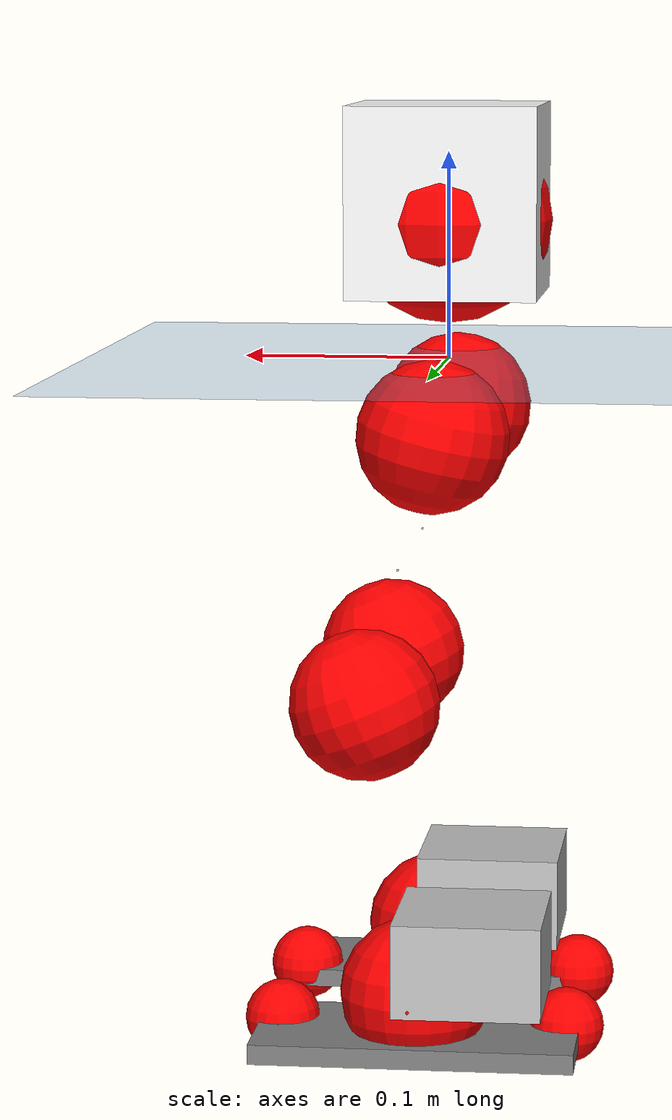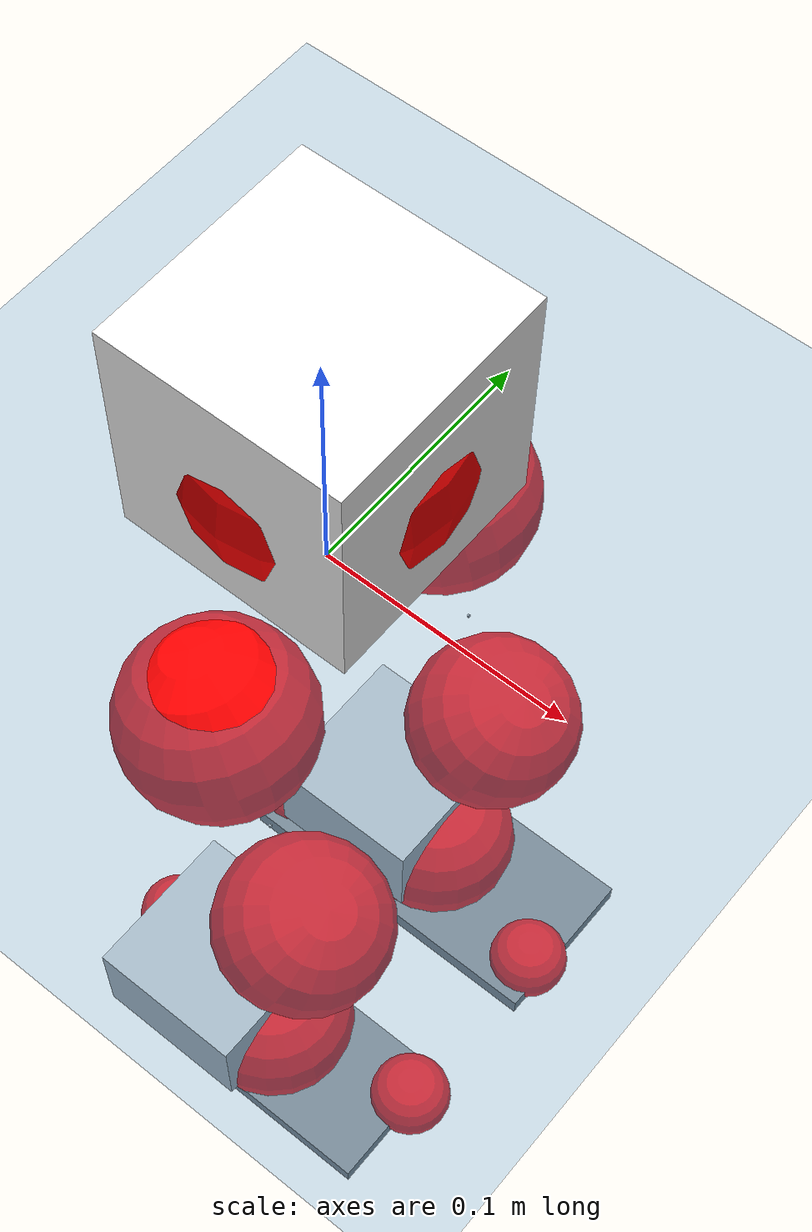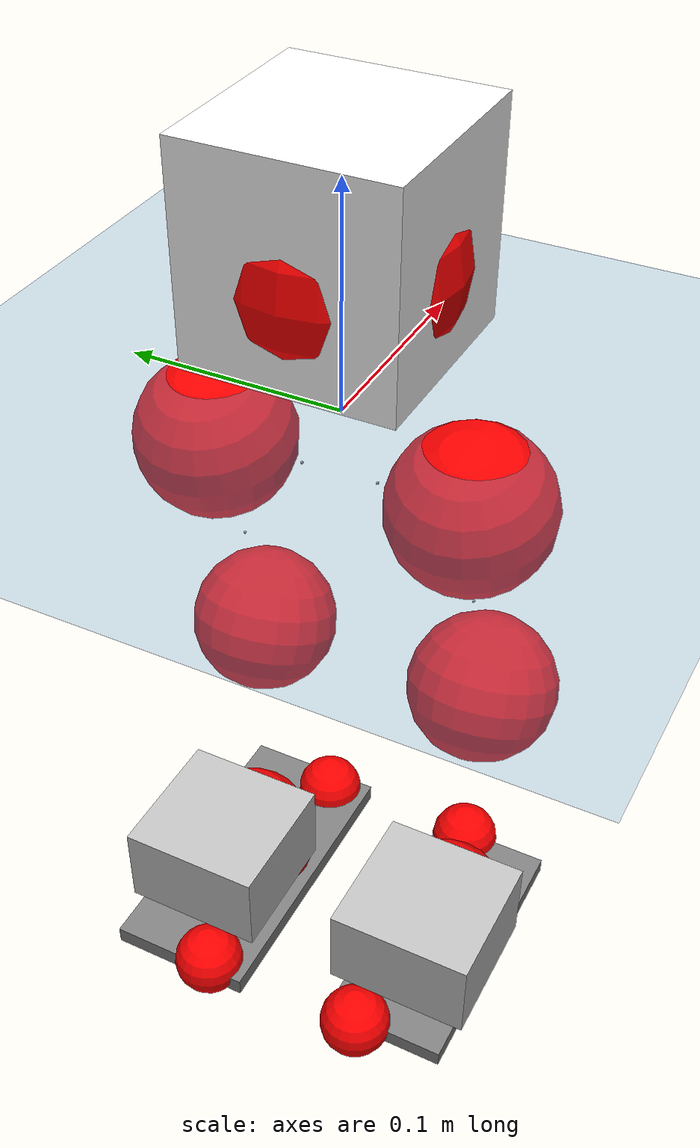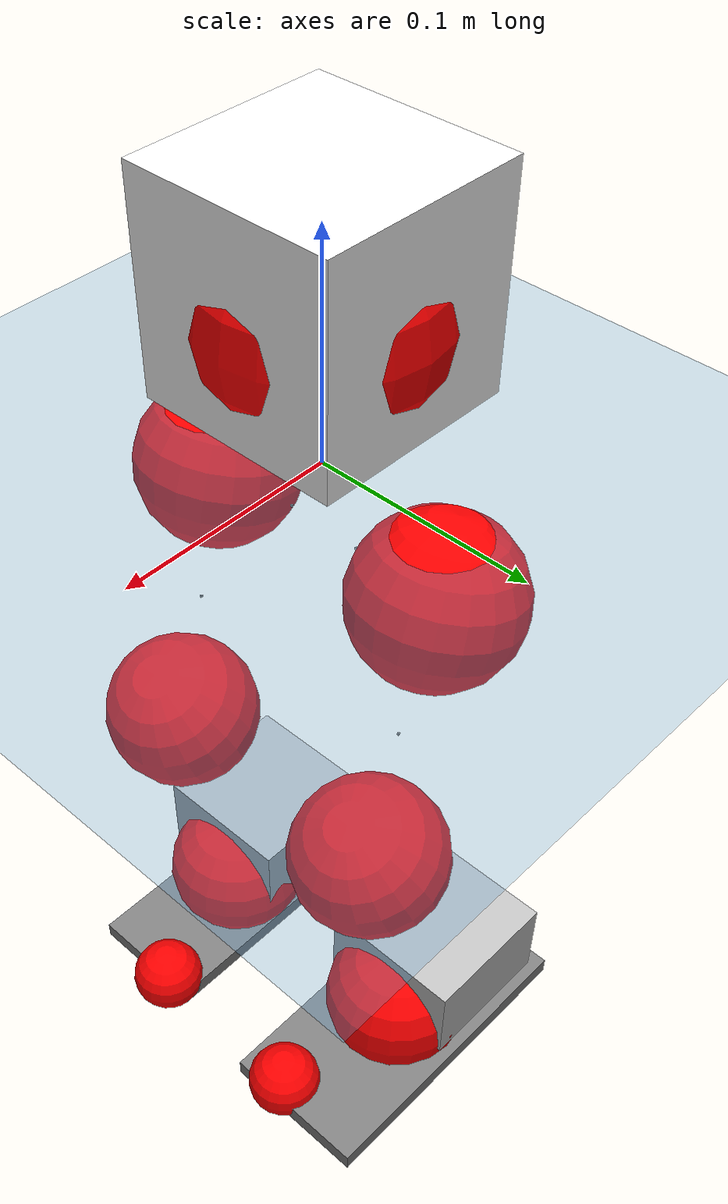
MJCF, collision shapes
<mujoco model="pi_12dof_release_v1">
  <compiler angle="radian" assetdir="assets" balanceinertia="true" inertiafromgeom="false"/>

  <option timestep="0.005" density="1.2" viscosity="2e-05"/>

  <size nkey="1"/>

  <visual>
    <quality shadowsize="8192"/>
    <map shadowclip="0.5"/>
  </visual>

  <default>
    <default class="/">
      <joint armature="0.01" damping="0.01" frictionloss="0.01"/>
      <geom contype="0" conaffinity="0" group="1" solref="-1000 -80"/>
      <site size="0.01 0.005 0.005" group="5"/>
      <general forcelimited="true" biastype="affine" gainprm="20" biasprm="0 -20 -0.5"/>
      <default class="foot">
        <geom size="0.0845 0.036 0.005" type="box" condim="6" group="4" priority="1" friction="0.9 0.2 0.2" solimp="0.015 1 0.005"/>
      </default>
      <default class="reward_collision_sphere">
        <geom group="5" rgba="1 0 0 1"/>
      </default>
    </default>
  </default>

  <asset>
    <texture type="skybox" colorspace="auto" name="//unnamed_texture_0" builtin="gradient" rgb1="0.95 0.95 0.95" rgb2="0.95 0.95 0.95" width="100" height="600"/>
    <texture type="2d" colorspace="auto" name="texplane" builtin="checker" rgb1="0.345 0.575 0.748" rgb2="0.345 0.575 0.748" markrgb="1 1 1" width="512" height="512"/>
    <material name="MatPlane" class="/" texture="texplane" texuniform="true" texrepeat="2 2" specular="0.9"/>
    <mesh name="baselink_1" class="/" file="baselink_1.STL"/>
    <mesh name="r_hip_pitch_link" class="/" file="r_hip_pitch_link.STL"/>
    <mesh name="r_hip_roll_link" class="/" file="r_hip_roll_link.STL"/>
    <mesh name="r_thigh_link" class="/" file="r_thigh_link.STL"/>
    <mesh name="r_calf_link" class="/" file="r_calf_link.STL"/>
    <mesh name="r_ankle_pitch_link" class="/" file="r_ankle_pitch_link.STL"/>
    <mesh name="r_ankle_roll_link" class="/" file="r_ankle_roll_link.STL"/>
    <mesh name="l_hip_pitch_link" class="/" file="l_hip_pitch_link.STL"/>
    <mesh name="l_hip_roll_link" class="/" file="l_hip_roll_link.STL"/>
    <mesh name="l_thigh_link" class="/" file="l_thigh_link.STL"/>
    <mesh name="l_calf_link" class="/" file="l_calf_link.STL"/>
    <mesh name="l_ankle_pitch_link" class="/" file="l_ankle_pitch_link.STL"/>
    <mesh name="l_ankle_roll_link" class="/" file="l_ankle_roll_link.STL"/>
  </asset>

  <worldbody>
    <geom name="floor" class="/" size="100 100 0.125" type="plane" group="0" material="MatPlane"/>
    <light name="toplight_shadow" class="/" pos="0 0 5" dir="0.0990148 0.0990148 -0.990148" type="directional" ambient="0.04 0.04 0.04" diffuse="0.55 0.55 0.55" specular="0.12 0.12 0.12"/>
    <light name="toplight_fill" class="/" pos="0 0 5" dir="0.0990148 0.0990148 -0.990148" type="directional" castshadow="false" ambient="0.04 0.04 0.04" diffuse="0.3 0.3 0.3" specular="0.08 0.08 0.08"/>
    <body name="trunk" pos="4.65197e-05 0.000510871 0.00091979" quat="1 0.000145648 5.2562e-05 -0.000177515">
      <inertial pos="0.00327532 -0.00155583 0.0390123" quat="0.694608 0.0112385 0.011746 0.719205" mass="1.65844" diaginertia="0.0119219 0.00231592 0.00338337"/>
      <joint name="//unnamed_joint_0" type="free"/>
      <geom name="//unnamed_geom_1" class="/" type="mesh" density="0" rgba="1 1 1 1" mesh="baselink_1"/>
      <geom name="//unnamed_geom_2" class="/" size="0.045898 0.045898 0.045898" pos="0 0 0.0764258" type="box" rgba="1 1 1 1"/>
      <geom name="//unnamed_geom_3" class="reward_collision_sphere" size="0.0504878" pos="0 0 0.0668726"/>
      <site name="imu" class="/" pos="-0.00393613 -0.00998547 0.00429308" size="0.0091796"/>
      <camera name="track" class="/" pos="0 -1.52447 0" quat="0.707107 0.707107 0 0" mode="trackcom"/>
      <camera name="ego_camera" class="/" pos="0.0777242 0 0.171958" quat="-0.5 -0.5 0.5 0.5"/>
      <body name="r_hip_pitch_link" pos="0.000289474 -0.0172742 -0.0312614" quat="0.992101 2.01884e-05 -0.125441 -0.000423921">
        <inertial pos="0.00191342 -0.0428794 -7.61625e-06" quat="-0.0188828 0.706021 -0.0285481 0.707364" mass="0.291165" diaginertia="0.000132024 2.57553e-05 6.6546e-05"/>
        <joint name="r_hip_pitch_joint" class="/" pos="0 0 0" axis="0.00236661 -0.999986 0.0046724" range="-1.75667 1.25974" armature="0.00956744" damping="0.0138102" frictionloss="0.00897366"/>
        <geom name="//unnamed_geom_4" class="/" type="mesh" density="0" rgba="0.75294 0.75294 0.75294 1" mesh="r_hip_pitch_link"/>
        <geom name="//unnamed_geom_5" class="/" size="0.00045898 0.00045898 0.00045898" type="box" rgba="0.75294 0.75294 0.75294 1"/>
        <body name="r_hip_roll_link" pos="0.00055661 -0.0423129 0.000252806" quat="1 -8.26395e-06 3.83249e-05 0.000152226">
          <inertial pos="-0.00139127 -0.00170201 -0.0607649" quat="0.705018 -0.0789743 -0.0805223 0.700164" mass="0.298918" diaginertia="0.000401032 7.22308e-05 0.000102422"/>
          <joint name="r_hip_roll_joint" class="/" pos="0 0 0" axis="-1 0.000241109 0.000350253" range="-0.110038 0.523229" armature="0.00877141" damping="0.00864383" frictionloss="0.00950849"/>
          <geom name="//unnamed_geom_6" class="/" type="mesh" density="0" rgba="0.75294 0.75294 0.75294 1" mesh="r_hip_roll_link"/>
          <geom name="//unnamed_geom_7" class="/" size="0.00045898 0.00045898 0.00045898" type="box" rgba="0.75294 0.75294 0.75294 1"/>
          <geom name="//unnamed_geom_8" class="reward_collision_sphere" size="0.0367184"/>
          <body name="r_thigh_link" pos="0.00180667 0.00247381 -0.065813" quat="1 0.000146436 9.71716e-05 -5.55724e-05">
            <inertial pos="0.000577756 0.00150458 -0.0458152" quat="0.737347 0.675515 -0.00020138 0.000197452" mass="0.0883451" diaginertia="0.000148495 2.42846e-05 4.5868e-05"/>
            <joint name="r_thigh_joint" class="/" pos="0 0 0" axis="9.30278e-05 0.000271577 -1" range="-0.31159 0.577455" armature="0.0093246" damping="0" frictionloss="0.00825375"/>
            <geom name="//unnamed_geom_9" class="/" type="mesh" density="0" rgba="0.75294 0.75294 0.75294 1" mesh="r_thigh_link"/>
            <geom name="//unnamed_geom_10" class="/" size="0.00045898 0.00045898 0.00045898" type="box" rgba="0.75294 0.75294 0.75294 1"/>
            <body name="r_calf_link" pos="-0.00104527 -0.00211969 -0.0656328" quat="0.947664 -5.32505e-05 0.319269 -4.44208e-05">
              <inertial pos="0.00037032 -0.000224103 -0.0666796" quat="0.99995 -0.00416298 0.0070049 0.00582656" mass="0.641645" diaginertia="0.00433919 0.000906997 0.000142164"/>
              <joint name="r_calf_joint" class="/" pos="0 0 0" axis="-0.00298683 -0.999995 -0.000973772" range="-1.6244 0.645614" armature="0.00901226" damping="0.011238" frictionloss="0.0093269"/>
              <geom name="//unnamed_geom_11" class="/" type="mesh" density="0" rgba="0.75294 0.75294 0.75294 1" mesh="r_calf_link"/>
              <geom name="//unnamed_geom_12" class="/" size="0.00045898 0.00045898 0.00045898" type="box" rgba="0.75294 0.75294 0.75294 1"/>
              <geom name="//unnamed_geom_13" class="reward_collision_sphere" size="0.0367184"/>
              <body name="r_ankle_pitch_link" pos="0.000224826 0.000274466 -0.133998" quat="0.980077 0.000361919 -0.198618 -4.2685e-05">
                <inertial pos="0.00491686 0.0027927 -0.00190934" quat="0.0096815 0.711367 -0.00585042 0.70273" mass="0.137602" diaginertia="0.000378882 5.82095e-05 9.72421e-05"/>
                <joint name="r_ankle_pitch_joint" class="/" pos="0 0 0" axis="0.00132077 -0.999986 0.00518941" range="-1.2962 0.538161" armature="0.00912383" damping="0.00949375" frictionloss="0.0096312"/>
                <geom name="//unnamed_geom_14" class="/" type="mesh" density="0" rgba="0.75294 0.75294 0.75294 1" mesh="r_ankle_pitch_link"/>
                <geom name="//unnamed_geom_15" class="/" size="0.0358004 0.0367184 0.022949" type="box" rgba="0.75294 0.75294 0.75294 1"/>
                <body name="r_ankle_roll_link" pos="0.0788275 0.00219126 -0.000189743" quat="1 1.11616e-05 -0.000109481 -8.96572e-06">
                  <inertial pos="-0.0246986 -9.23308e-05 -0.0118781" quat="0.556694 0.432385 0.436121 0.559405" mass="0.389175" diaginertia="0.00130153 0.000264767 0.000216078"/>
                  <joint name="r_ankle_roll_joint" class="/" pos="0 0 0" axis="-0.999971 -0.00582495 0.00499197" stiffness="0.000130496" range="-0.159472 0.131696" armature="0.00847035" damping="0.00936914" frictionloss="0.00954477"/>
                  <geom name="//unnamed_geom_16" class="/" type="mesh" density="0" rgba="0.75294 0.75294 0.75294 1" mesh="r_ankle_roll_link"/>
                  <geom name="//unnamed_geom_17" class="/" type="mesh" rgba="0.75294 0.75294 0.75294 1" mesh="r_ankle_roll_link"/>
                  <geom name="right_foot" class="foot" size="0.0705879 0.03137 0.00438717" pos="-0.0528525 0 -0.0420342"/>
                  <geom name="//unnamed_geom_19" class="reward_collision_sphere" size="0.0367184" pos="-0.0518162 0 -0.0191065"/>
                  <geom name="//unnamed_geom_20" class="reward_collision_sphere" size="0.0183592" pos="0.0155448 0.0152447 -0.0382129"/>
                  <geom name="//unnamed_geom_21" class="reward_collision_sphere" size="0.0183592" pos="-0.124359 0.0152447 -0.0382129"/>
                  <site name="right_foot" class="foot" pos="-0.0528525 0 -0.0420342" size="0.0091796"/>
                </body>
              </body>
            </body>
          </body>
        </body>
      </body>
      <body name="l_hip_pitch_link" pos="0.0005549 0.018606 -0.032577" quat="0.992194 5.98447e-05 -0.124706 -0.000137317">
        <inertial pos="0.00110704 0.0404107 -0.00136303" quat="-0.0406743 0.704597 0.0286457 0.707862" mass="0.304305" diaginertia="0.0001542 2.69599e-05 7.98958e-05"/>
        <joint name="l_hip_pitch_joint" class="/" pos="0 0 0" axis="-0.00100182 0.999985 -0.00529767" range="-1.24358 1.75829" armature="0.00927842" damping="0.0147559" frictionloss="0.00895933"/>
        <geom name="//unnamed_geom_22" class="/" type="mesh" density="0" rgba="0.75294 0.75294 0.75294 1" mesh="l_hip_pitch_link"/>
        <geom name="//unnamed_geom_23" class="/" size="0.00045898 0.00045898 0.00045898" type="box" rgba="0.75294 0.75294 0.75294 1"/>
        <body name="l_hip_roll_link" pos="0.00106774 0.042931 0.000327365" quat="1 -0.000353012 7.99353e-05 -4.09628e-05">
          <inertial pos="-0.00218245 7.21462e-07 -0.060493" quat="0.695908 -0.076282 -0.0818986 0.709356" mass="0.295679" diaginertia="0.000385892 7.02661e-05 9.93436e-05"/>
          <joint name="l_hip_roll_joint" class="/" pos="0 0 0" axis="-1 -0.000129605 9.94674e-05" range="-0.532151 0.124218" armature="0.00951114" damping="0" frictionloss="0.00918092"/>
          <geom name="//unnamed_geom_24" class="/" type="mesh" density="0" rgba="0.75294 0.75294 0.75294 1" mesh="l_hip_roll_link"/>
          <geom name="//unnamed_geom_25" class="/" size="0.00045898 0.00045898 0.00045898" type="box" rgba="0.75294 0.75294 0.75294 1"/>
          <geom name="//unnamed_geom_26" class="reward_collision_sphere" size="0.0367184"/>
          <body name="l_thigh_link" pos="0.000321576 -0.00161396 -0.0665242" quat="1 6.606e-05 -3.64958e-05 -2.82093e-05">
            <inertial pos="-0.000339638 -0.000964643 -0.0458342" quat="0.674727 0.738063 -0.00191751 0.00146668" mass="0.087248" diaginertia="0.000149708 2.41305e-05 4.66756e-05"/>
            <joint name="l_thigh_joint" class="/" pos="0 0 0" axis="-6.88663e-05 -0.000987874 -1" range="-0.600553 0.3143" armature="0.00907814" damping="0.00413662" frictionloss="0.00893365"/>
            <geom name="//unnamed_geom_27" class="/" type="mesh" density="0" rgba="0.75294 0.75294 0.75294 1" mesh="l_thigh_link"/>
            <geom name="//unnamed_geom_28" class="/" size="0.00045898 0.00045898 0.00045898" type="box" rgba="0.75294 0.75294 0.75294 1"/>
            <body name="l_calf_link" pos="-0.000664303 0.00054391 -0.067642" quat="0.947587 0.000180604 0.319498 0.000178069">
              <inertial pos="0.000342906 0.00312729 -0.0673468" quat="0.999984 0.00290042 -0.000353202 0.00491857" mass="0.607413" diaginertia="0.00409242 0.000877282 0.000135881"/>
              <joint name="l_calf_joint" class="/" pos="0 0 0" axis="-0.00118249 0.999998 0.00144824" stiffness="0.000991774" range="-0.611923 1.6788" armature="0.00913346" damping="0.00665446" frictionloss="0.00882529"/>
              <geom name="//unnamed_geom_29" class="/" type="mesh" density="0" rgba="0.75294 0.75294 0.75294 1" mesh="l_calf_link"/>
              <geom name="//unnamed_geom_30" class="/" size="0.00045898 0.00045898 0.00045898" type="box" rgba="0.75294 0.75294 0.75294 1"/>
              <geom name="//unnamed_geom_31" class="reward_collision_sphere" size="0.0367184"/>
              <body name="l_ankle_pitch_link" pos="-0.000583273 0.000582112 -0.132605" quat="0.980073 0.00011888 -0.198638 -1.14598e-05">
                <inertial pos="0.00555483 -0.000917295 4.68006e-05" quat="-0.00221166 0.707582 0.00189444 0.706625" mass="0.133915" diaginertia="0.000360222 5.62887e-05 9.52213e-05"/>
                <joint name="l_ankle_pitch_joint" class="/" pos="0 0 0" axis="-2.22792e-05 1 5.5667e-05" range="-0.533188 1.29419" armature="0.00896976" damping="0.00408181" frictionloss="0.00917915"/>
                <geom name="//unnamed_geom_32" class="/" type="mesh" density="0" rgba="0.75294 0.75294 0.75294 1" mesh="l_ankle_pitch_link"/>
                <geom name="//unnamed_geom_33" class="/" size="0.0358004 0.0367184 0.022949" type="box" rgba="0.75294 0.75294 0.75294 1"/>
                <body name="l_ankle_roll_link" pos="0.0793835 0.00017192 -0.000274023" quat="1 3.10217e-06 2.25334e-05 4.93256e-06">
                  <inertial pos="-0.0257045 -0.00010227 -0.0140987" quat="0.558088 0.430761 0.435572 0.559696" mass="0.4017" diaginertia="0.00135635 0.000265173 0.000226494"/>
                  <joint name="l_ankle_roll_joint" class="/" pos="0 0 0" axis="-0.999999 -0.00168983 -0.000187867" range="-0.164149 0.152319" armature="0.00922013" damping="0.0089531" frictionloss="0.00920579"/>
                  <geom name="//unnamed_geom_34" class="/" type="mesh" density="0" rgba="0.75294 0.75294 0.75294 1" mesh="l_ankle_roll_link"/>
                  <geom name="//unnamed_geom_35" class="/" type="mesh" rgba="0.75294 0.75294 0.75294 1" mesh="l_ankle_roll_link"/>
                  <geom name="left_foot" class="foot" size="0.0781397 0.0376982 0.00485398" pos="-0.0528525 0 -0.0420342"/>
                  <geom name="//unnamed_geom_37" class="reward_collision_sphere" size="0.0367184" pos="-0.0518162 0 -0.0191065"/>
                  <geom name="//unnamed_geom_38" class="reward_collision_sphere" size="0.0183592" pos="0.0155448 -0.0152447 -0.0382129"/>
                  <geom name="//unnamed_geom_39" class="reward_collision_sphere" size="0.0183592" pos="-0.124359 -0.0152447 -0.0382129"/>
                  <site name="left_foot" class="foot" pos="-0.0528525 0 -0.0420342" size="0.0091796"/>
                </body>
              </body>
            </body>
          </body>
        </body>
      </body>
    </body>
  </worldbody>

  <contact>
    <pair class="/" geom1="floor" geom2="right_foot" name="//unnamed_contact_1"/>
    <pair class="/" geom1="floor" geom2="left_foot" name="//unnamed_contact_0"/>
  </contact>

  <actuator>
    <general name="r_hip_pitch_joint" class="/" joint="r_hip_pitch_joint" forcerange="-19.318 19.318" gainprm="18.4997" biasprm="0 -18.4997 -0.46968"/>
    <general name="r_hip_roll_joint" class="/" joint="r_hip_roll_joint" forcerange="-18.502 18.502" gainprm="18.4997" biasprm="0 -18.4997 -0.46968"/>
    <general name="r_thigh_joint" class="/" joint="r_thigh_joint" forcerange="-18.6814 18.6814" gainprm="18.4997" biasprm="0 -18.4997 -0.46968"/>
    <general name="r_calf_joint" class="/" joint="r_calf_joint" forcerange="-19.7886 19.7886" gainprm="18.4997" biasprm="0 -18.4997 -0.46968"/>
    <general name="r_ankle_pitch_joint" class="/" joint="r_ankle_pitch_joint" forcerange="-18.6301 18.6301" gainprm="18.4997" biasprm="0 -18.4997 -0.46968"/>
    <general name="r_ankle_roll_joint" class="/" joint="r_ankle_roll_joint" forcerange="-18.6518 18.6518" gainprm="18.4997" biasprm="0 -18.4997 -0.46968"/>
    <general name="l_hip_pitch_joint" class="/" joint="l_hip_pitch_joint" forcerange="-19.4447 19.4447" gainprm="18.4997" biasprm="0 -18.4997 -0.46968"/>
    <general name="l_hip_roll_joint" class="/" joint="l_hip_roll_joint" forcerange="-19.8994 19.8994" gainprm="18.4997" biasprm="0 -18.4997 -0.46968"/>
    <general name="l_thigh_joint" class="/" joint="l_thigh_joint" forcerange="-18.3244 18.3244" gainprm="18.4997" biasprm="0 -18.4997 -0.46968"/>
    <general name="l_calf_joint" class="/" joint="l_calf_joint" forcerange="-19.588 19.588" gainprm="18.4997" biasprm="0 -18.4997 -0.46968"/>
    <general name="l_ankle_pitch_joint" class="/" joint="l_ankle_pitch_joint" forcerange="-18.8237 18.8237" gainprm="18.4997" biasprm="0 -18.4997 -0.46968"/>
    <general name="l_ankle_roll_joint" class="/" joint="l_ankle_roll_joint" forcerange="-20.7714 20.7714" gainprm="18.4997" biasprm="0 -18.4997 -0.46968"/>
  </actuator>

  <sensor>
    <gyro site="imu" name="imu_angular_velocity"/>
    <velocimeter site="imu" name="imu_linear_velocity"/>
    <framelinvel objtype="site" objname="left_foot" name="left_foot_global_linear_velocity"/>
    <framelinvel objtype="site" objname="right_foot" name="right_foot_global_linear_velocity"/>
  </sensor>

  <keyframe>
    <key name="home" qpos="0 0 0.291 1 0 0 0 0.4 0 0 -0.8 0.4 0 -0.4 0 0 0.8 -0.4 0"/>
  </keyframe>
</mujoco>
